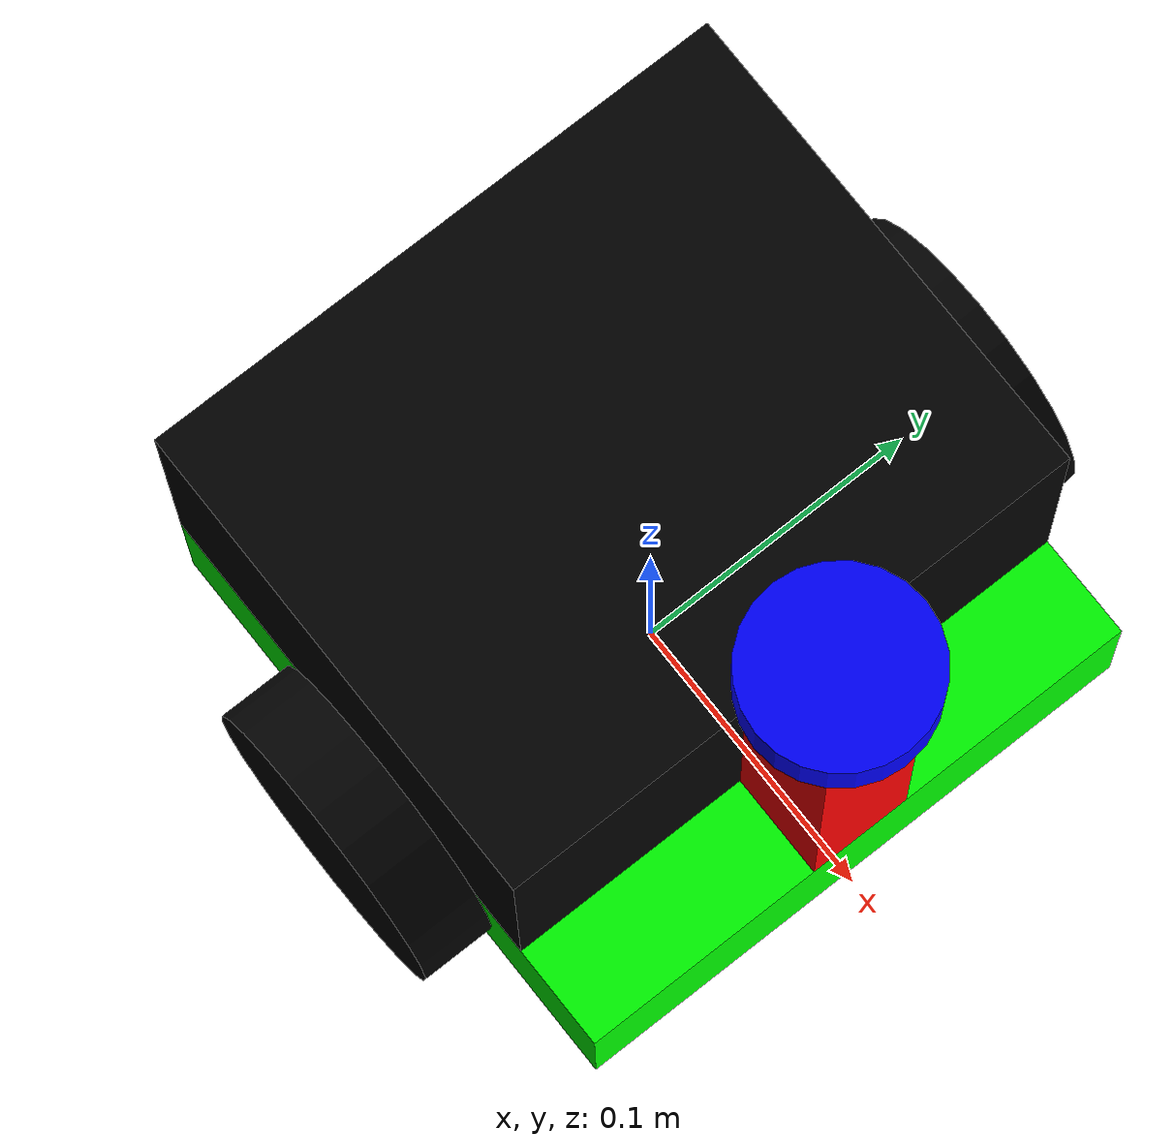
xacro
<?xml version="1.0"?>

<robot name="my_bot" xmlns:xacro="http://www.ros.org/wiki/xacro">

    <!-- materials included -->
    <xacro:include filename="materials.xacro"/>

    <!-- base_link and base_foot_print included -->
    <xacro:include filename="base/base.xacro"/>
    <!-- function call to create base -->
    <xacro:create_box
        prefix="base_link"
        length="${box_length}"
        width="${box_width}"
        height="${box_height}"
        color="green"
    />

    <!-- A function call to create joint -->
    <xacro:create_joint
        parent_link="base_footprint"
        child_link="base_link_box"
        type="fixed"
        reflect="1"
        x ="0" y="0" z="${ground_offset + box_height/2}"
        roll="0" pitch="0" yaw="0"
    />

    <!-- drive wheels included -->
    <xacro:include filename="wheels/wheels.xacro"/>
    <!-- A function call to create left_wheel -->
    <xacro:create_wheel
        prefix="left"
        radius="${wheel_radius}"
        width="${wheel_width}"
        color="black"
    />

    <xacro:create_wheel_joint
        parent_link="base_link_box"
        child_link="left_wheel_link"
        type="continuous"
        reflect="1"
        x ="0" y ="${box_width/2 + wheel_width/2}" z="0"
        roll="0" pitch="0" yaw="0"
        axis="0 1 0"
    />

    <!-- A function call to create left_wheel -->
    <xacro:create_wheel
        prefix="right"
        radius="${wheel_radius}"
        width="${wheel_width}"
        color="black"
    />

    <xacro:create_wheel_joint
        parent_link="base_link_box"
        child_link="right_wheel_link"
        type="continuous"
        reflect="-1"
        x ="0" y ="${box_width/2 + wheel_width/2}" z="0"
        roll="0" pitch="0" yaw="0"
        axis="0 1 0"
    />

    <!-- castor_wheels included -->
    <xacro:include filename="wheels/castor_wheels.xacro"/>
    <!-- A function call to create  front castor_wheel -->
    <xacro:create_castor_wheel
        prefix="front"
        radius="${castor_radius}"
        color = "black"
    />

    <xacro:create_wheel_joint
        parent_link="base_link_box"
        child_link="front_castor_wheel"
        type="fixed"
        reflect="1"
        x="${castor_x_offset}" y="0" z="${-1*(box_height-castor_radius)}"
        roll="0" pitch="0" yaw="0"
        axis="1 1 1"
    />

    <!-- A function call to create rear castor_wheel -->
    <xacro:create_castor_wheel
        prefix="rear"
        radius="${castor_radius}"
        color = "black"
    />

    <xacro:create_wheel_joint
        parent_link="base_link_box"
        child_link="rear_castor_wheel"
        type="fixed"
        reflect="-1"
        x="${castor_x_offset}" y="0" z="${(box_height-castor_radius)}"
        roll="0" pitch="0" yaw="0"
        axis="1 1 1"
    />

    <!-- lidar_mount and lidar included -->
    <xacro:include filename="sensors/lidar.xacro"/>

    <!-- A function call to create lidar_mount -->
    <xacro:create_box
        prefix="lidar_mount"
        length="${lidar_mount_length}"
        width="${lidar_mount_width}"
        height="${lidar_mount_height}"
        color="red"
    />

    <xacro:create_joint
        parent_link="base_link_box"
        child_link="lidar_mount_box"
        type="fixed"
        reflect="1"
        x="${lidar_mount_x_offset}" y="0" z="${box_height/2 + lidar_mount_height/2}"
        roll="0" pitch="0" yaw="0"
    />

<!-- A function call to spawn lidar -->
    <xacro:spawn_lidar
        radius="${lidar_radius}"
        height="${lidar_height}"
        color="blue"
    />

    <xacro:create_joint
        parent_link="lidar_mount_box"
        child_link="lidar"
        type="fixed"
        reflect="1"
        x="0" y="0" z="${lidar_mount_height/2 + lidar_height/2}"
        roll="0" pitch="0" yaw="0"
    />

    <xacro:include filename="cargo/cargo.xacro"/>
    <xacro:create_box
        prefix="cargo"
        length="${cargo_length}"
        width="${cargo_width}"
        height="${cargo_height}"
        color="black"
    />

    <xacro:create_joint
        parent_link="base_link_box"
        child_link="cargo_box"
        type="fixed"
        reflect="1"
        x="${-lidar_mount_width/2}" y="0" z="${box_height/2 + cargo_height/2}"
        roll="0" pitch="0" yaw="0"
    />

</robot>

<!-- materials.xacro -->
<robot xmlns:xacro="http://www.ros.org/wiki/xacro">

    <!-- colors definition -->
<material name="green">
    <color rgba="0 1 0 1"/>

</material>

<material name="black">
    <color rgba="0.0 0.0 0.0 1"/>
</material>

<material name="blue">
    <color rgba="0.0 0.0 1.0 1.0"/>
</material>

<material name="red">
    <color rgba="1.0 0.0 0.0 1.0"/>
</material>

</robot>

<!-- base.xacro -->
<robot xmlns:xacro="http://www.ros.org/wiki/xacro">
    <!-- declaring variables -->
    <xacro:property name="box_length" value="0.2"/>
    <xacro:property name="box_width" value="0.2"/>
    <xacro:property name="box_height" value="0.05"/>
    <xacro:property name="ground_offset" value="0.025"/>

    <!-- base_footprint -->
    <link name="base_footprint"/>

    <!-- create_box function declaration -->
    <xacro:macro name="create_box" params="prefix length width height color">

        <link name="${prefix}_box">
            <visual>
                <origin xyz="0 0 0" rpy="0 0 0"/>
                <geometry>
                    <box size="${length} ${width} ${height}"/>
                </geometry>
                <material name="${color}"/>
            </visual>

            <collision>
                <origin xyz="0 0 0" rpy="0 0 0"/>
                <geometry>
                    <box size="${length} ${width} ${height}"/>
                </geometry>
            </collision>

        </link>
    </xacro:macro>

        <!-- create_joint function declaration -->
   <xacro:macro name="create_joint" params="parent_link child_link type reflect x y z roll pitch yaw">
        <joint name="${parent_link}_to_${child_link}" type="${type}">
            <parent link="${parent_link}"/>
            <child link="${child_link}"/>
            <origin xyz="${reflect * x} ${reflect * y} ${reflect * z}" rpy="${roll} ${pitch} ${yaw}"/>
        </joint>
    </xacro:macro>
</robot>

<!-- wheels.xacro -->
<robot xmlns:xacro="http://www.ros.org/wiki/xacro">

    <!-- Properties declaarations -->
    <xacro:property name="wheel_radius" value="0.05"/>
    <xacro:property name="wheel_width" value="0.025"/>

    <xacro:macro name="create_wheel" params="prefix radius width color">
        <link name="${prefix}_wheel_link">
            <visual>
                <origin xyz="0 0 0" rpy="${pi/2} 0 0"/>
                <geometry>
                    <cylinder radius="${radius}" length="${width}"/>
                </geometry>
                <material name="${color}"/>
            </visual>
            <collision>
                <origin xyz="0 0 0" rpy="${pi/2} 0 0"/>
                <geometry>
                    <cylinder radius="${radius}" length="${width}"/>
                </geometry>
            </collision>
        </link>
    </xacro:macro>

    <!-- create_wheel_joint function declaration -->
   <xacro:macro name="create_wheel_joint" params="parent_link child_link type reflect x y z roll pitch yaw axis">
        <joint name="${parent_link}_to_${child_link}" type="${type}">
            <parent link="${parent_link}"/>
            <child link="${child_link}"/>
            <origin xyz="${reflect * x} ${reflect * y} ${reflect * z}" rpy="${roll} ${pitch} ${yaw}"/>
            <axis xyz="${axis}"/>
        </joint>
    </xacro:macro>

</robot>

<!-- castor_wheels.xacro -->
<robot xmlns:xacro="http://www.ros.org/wiki/xacro">

<!-- castor wheel properties -->
<xacro:property name="castor_radius" value="0.012"/>
<xacro:property name="castor_x_offset" value="0.075"/>

<!-- A function declaration for a castor_wheel -->
    <xacro:macro name="create_castor_wheel" params="prefix radius color">
        <link name="${prefix}_castor_wheel">
            <visual>
                <origin xyz="0.0 0.0 0.0" rpy="0.0 0.0 0.0"/>
                <geometry>
                    <sphere radius="${radius}"/>
                </geometry>
                <material name="${color}"/>
            </visual>
            <collision>
                <origin xyz="0.0 0.0 0.0" rpy="0.0 0.0 0.0"/>
                <geometry>
                    <sphere radius="${radius}"/>
                </geometry>
            </collision>
        </link>
    </xacro:macro>

</robot>

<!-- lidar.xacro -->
<robot xmlns:xacro="http://www.ros.org/wiki/xacro">

    <!-- lidar and lidar_mount properties -->
    <xacro:property name="lidar_mount_length" value="0.035"/>
    <xacro:property name="lidar_mount_width" value="0.035"/>
    <xacro:property name="lidar_mount_height" value="0.150"/>
    <xacro:property name="lidar_mount_x_offset" value="0.0825"/>
    <xacro:property name="lidar_radius" value="0.0295"/>
    <xacro:property name="lidar_height" value="0.02"/>

    <xacro:macro name="spawn_lidar" params="radius height color">
        <link name="lidar">
            <visual>
                <origin xyz="0.0 0.0 0.0" rpy="0.0 0.0 0.0"/>
            <geometry>
                <cylinder radius="${radius}" length="${height}"/>
            </geometry>
            <material name="${color}"/>
            </visual>
            <collision>
                <origin xyz="0.0 0.0 0.0" rpy="0.0 0.0 0.0"/>
                <geometry>
                    <cylinder radius="${radius}" length="${height}"/>
                </geometry>
            </collision>
        </link>
    </xacro:macro>
</robot>

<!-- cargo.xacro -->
<robot xmlns:xacro="http://www.ros.org/wiki/xacro">

<xacro:property name="cargo_length" value="0.165"/>
<xacro:property name="cargo_width" value="0.2"/>
<xacro:property name="cargo_height" value="0.1"/>

</robot>
